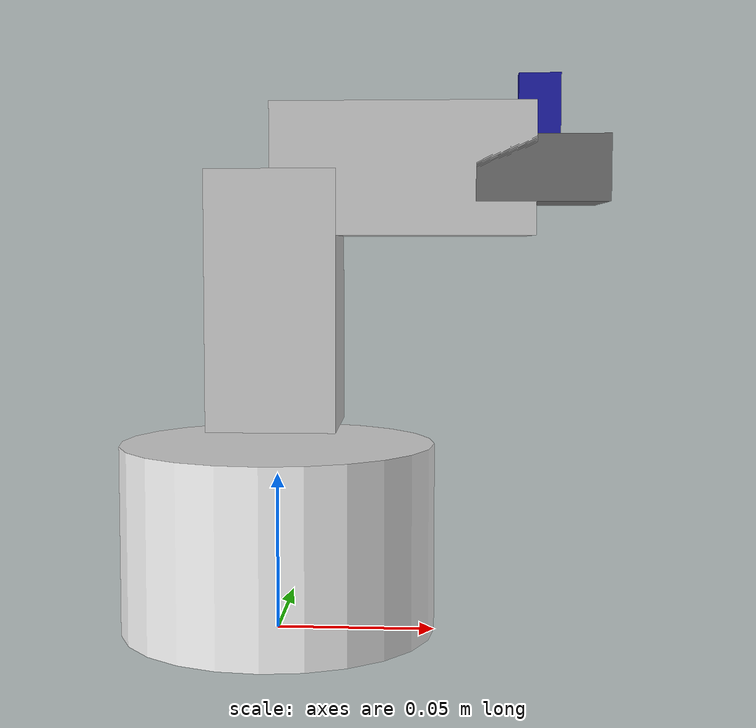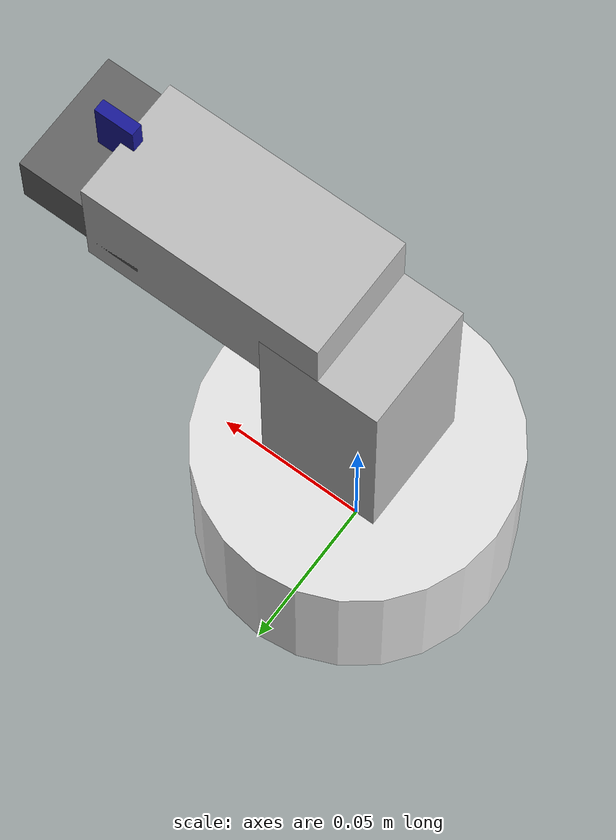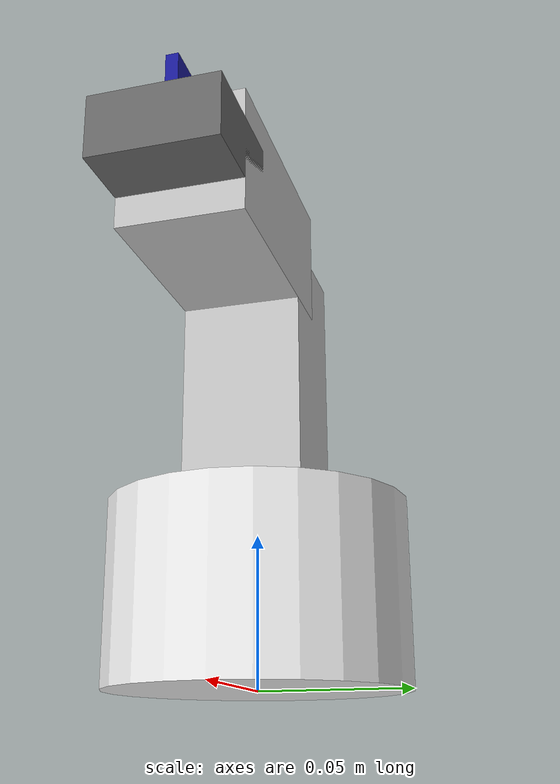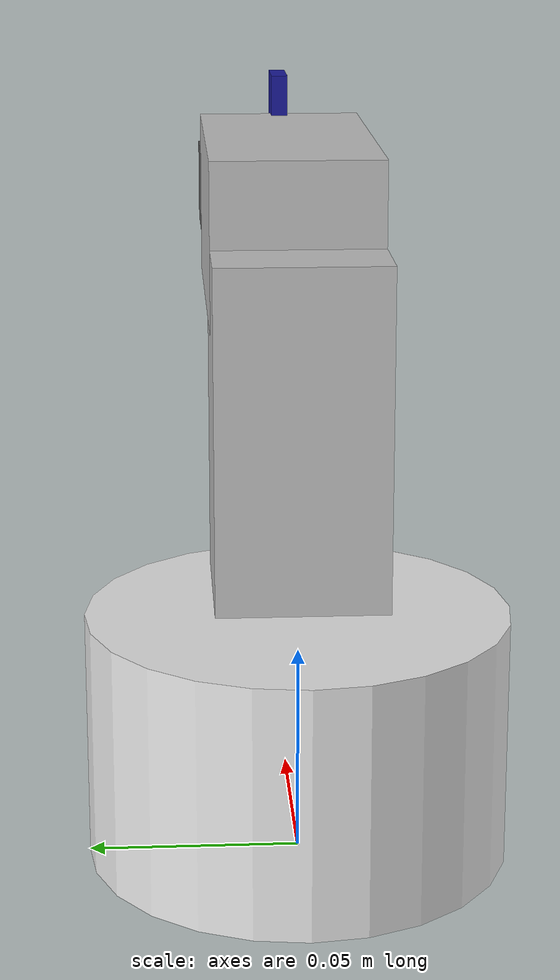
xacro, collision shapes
<?xml version="1.0"?>
<robot name="robot_arm" xmlns:xacro="http://www.ros.org/wiki/xacro">

  <!-- ── Constants ────────────────────────────────────────────────────── -->
  <xacro:property name="PI" value="3.14159265358979"/>

  <!-- Mesh scale: STL files are in mm → scale to metres -->
  <xacro:property name="mesh_scale" value="0.01 0.01 0.01"/>

  <!-- Default inertia helper: solid box approximation -->
  <xacro:macro name="box_inertia" params="m x y z">
    <inertial>
      <origin xyz="0 0 0" rpy="0 0 0"/>
      <mass value="${m}"/>
      <inertia
        ixx="${m*(y*y+z*z)/12}" ixy="0" ixz="0"
        iyy="${m*(x*x+z*z)/12}" iyz="0"
        izz="${m*(x*x+y*y)/12}"/>
    </inertial>
  </xacro:macro>

  <!-- ================================================================
       LINKS
  ================================================================ -->

  <!-- 1. world (virtual fixed origin) -->
  <link name="world"/>

  <!-- 2. base_link (basement / motor base) -->
  <link name="base_link">
    <xacro:box_inertia m="1.0" x="0.1" y="0.1" z="0.06"/>
    <visual>
      <origin rpy="0 0 0" xyz="-0.5 -0.5 0"/>
      <geometry>
        <mesh filename="package://robot_arm_description/meshes/basement.stl"
              scale="${mesh_scale}"/>
      </geometry>
      <material name="white">
        <color rgba="0.9 0.9 0.9 1"/>
      </material>
    </visual>
    <collision>
      <origin xyz="0 0 0.03" rpy="0 0 0"/>
      <geometry>
        <cylinder radius="0.05" length="0.06"/>
      </geometry>
    </collision>
  </link>

  <!-- 3. base_plate (rotating shoulder base) -->
  <link name="base_plate">
    <xacro:box_inertia m="0.5" x="0.08" y="0.08" z="0.03"/>
    <visual>
      <origin rpy="0 0 0" xyz="-0.39 -0.39 -0.56"/>
      <geometry>
        <mesh filename="package://robot_arm_description/meshes/base_plate.stl"
              scale="${mesh_scale}"/>
      </geometry>
      <material name="blue_dark">
        <color rgba="0.1 0.1 0.6 1"/>
      </material>
    </visual>
    <collision>
      <origin xyz="0 0 0" rpy="0 0 0"/>
      <geometry>
        <cylinder radius="0.04" length="0.03"/>
      </geometry>
    </collision>
  </link>

  <!-- 4. forward_drive_arm (first arm segment, vertical) -->
  <link name="forward_drive_arm">
    <xacro:box_inertia m="0.3" x="0.04" y="0.04" z="0.08"/>
    <visual>
      <origin rpy="0 -${PI/2} ${PI/2}" xyz="0.19 0.06 -0.08"/>
      <geometry>
        <mesh filename="package://robot_arm_description/meshes/forward_drive_arm.stl"
              scale="${mesh_scale}"/>
      </geometry>
      <material name="grey_light">
        <color rgba="0.75 0.75 0.75 1"/>
      </material>
    </visual>
    <collision>
      <origin xyz="0 0 0.04" rpy="0 0 0"/>
      <geometry>
        <box size="0.04 0.04 0.08"/>
      </geometry>
    </collision>
  </link>

  <!-- 5. horizontal_arm (second arm segment, horizontal reach) -->
  <link name="horizontal_arm">
    <xacro:box_inertia m="0.25" x="0.08" y="0.04" z="0.04"/>
    <visual>
      <origin rpy="${PI/2} 0 ${PI/2}" xyz="-0.03 -0.4 -0.06"/>
      <geometry>
        <mesh filename="package://robot_arm_description/meshes/horizontal_arm.stl"
              scale="${mesh_scale}"/>
      </geometry>
      <material name="grey_light"/>
    </visual>
    <collision>
      <origin xyz="0.04 0 0" rpy="0 0 0"/>
      <geometry>
        <box size="0.08 0.04 0.04"/>
      </geometry>
    </collision>
  </link>

  <!-- 6. claw_support (wrist / end-effector mounting plate) -->
  <link name="claw_support">
    <xacro:box_inertia m="0.15" x="0.04" y="0.04" z="0.02"/>
    <visual>
      <origin rpy="0 0 ${PI/2}" xyz="0 -0.05 -0.15"/>
      <geometry>
        <mesh filename="package://robot_arm_description/meshes/claw_support.stl"
              scale="${mesh_scale}"/>
      </geometry>
      <material name="grey_dark">
        <color rgba="0.4 0.4 0.4 1"/>
      </material>
    </visual>
    <collision>
      <origin xyz="0 0 0" rpy="0 0 0"/>
      <geometry>
        <box size="0.04 0.04 0.02"/>
      </geometry>
    </collision>
  </link>

  <!-- 7. gripper_right (right finger — actively controlled, joint4) -->
  <link name="gripper_right">
    <xacro:box_inertia m="0.05" x="0.013" y="0.004" z="0.02"/>
    <visual>
      <origin rpy="0 0 -${PI/2}" xyz="-0.1 0.5 -0.1"/>
      <geometry>
        <mesh filename="package://robot_arm_description/meshes/right_finger.stl"
              scale="${mesh_scale}"/>
      </geometry>
      <material name="blue_dark"/>
    </visual>
    <collision>
      <origin xyz="0 0 0.01" rpy="0 0 0"/>
      <geometry>
        <box size="0.013 0.004 0.02"/>
      </geometry>
    </collision>
  </link>

  <!-- 8. gripper_left (left finger — mirrors joint4 via mimic) -->
  <link name="gripper_left">
    <xacro:box_inertia m="0.05" x="0.013" y="0.004" z="0.02"/>
    <visual>
      <origin rpy="0 0 -${PI/2}" xyz="-0.04 0.5 -0.1"/>
      <geometry>
        <mesh filename="package://robot_arm_description/meshes/left_finger.stl"
              scale="${mesh_scale}"/>
      </geometry>
      <material name="blue_dark"/>
    </visual>
    <collision>
      <origin xyz="0 0 0.01" rpy="0 0 0"/>
      <geometry>
        <box size="0.013 0.004 0.02"/>
      </geometry>
    </collision>
  </link>

  <!-- ================================================================
       JOINTS
  ================================================================ -->

  <!-- J0 — world → base_link  (fixed: robot bolted to ground) -->
  <joint name="world_to_base" type="fixed">
    <parent link="world"/>
    <child  link="base_link"/>
    <origin rpy="0 0 0" xyz="0 0 0"/>
  </joint>

  <!-- J1 — base_link → base_plate  (revolute: waist rotation around Z)
       Height offset: 3.07 cm (from TP diagram) -->
  <joint name="joint1" type="revolute">
    <parent link="base_link"/>
    <child  link="base_plate"/>
    <origin rpy="0 0 0" xyz="0 0 0.0307"/>
    <axis xyz="0 0 1"/>
    <limit lower="-${PI/2}" upper="${PI/2}"
           effort="100" velocity="1.0"/>
  </joint>

  <!-- J2 — base_plate → forward_drive_arm  (revolute: shoulder pitch around Y)
       Height offset: 3.5 cm (from TP diagram) -->
  <joint name="joint2" type="revolute">
    <parent link="base_plate"/>
    <child  link="forward_drive_arm"/>
    <origin rpy="0 0 0" xyz="0 0 0.035"/>
    <axis xyz="1 0 0"/>
    <limit lower="-${PI/2}" upper="${PI/2}"
           effort="100" velocity="1.0"/>
  </joint>

  <!-- J3 — forward_drive_arm → horizontal_arm  (revolute: elbow pitch around Y)
       Height offset: 8 cm (from TP diagram) -->
  <joint name="joint3" type="revolute">
    <parent link="forward_drive_arm"/>
    <child  link="horizontal_arm"/>
    <origin rpy="0 0 0" xyz="0 0 0.08"/>
    <axis xyz="1 0 0"/>
    <limit lower="-${PI/2}" upper="${PI/2}"
           effort="100" velocity="1.0"/>
  </joint>

  <!-- J_claw — horizontal_arm → claw_support  (revolute: wrist rotation)
       Horizontal offset: 8.2 cm (from TP diagram) -->
  <joint name="joint_claw" type="revolute">
    <parent link="horizontal_arm"/>
    <child  link="claw_support"/>
    <origin rpy="0 0 0" xyz="0.082 0 0"/>
    <axis xyz="0 0 1"/>
    <limit lower="-${PI/2}" upper="${PI/2}"
           effort="50" velocity="1.0"/>
  </joint>

  <!-- J4 — claw_support → gripper_right  (prismatic: finger open/close)
       Range: 0 → 2.2 cm, offset 1 cm up (from TP diagram) -->
  <joint name="joint4" type="prismatic">
    <parent link="claw_support"/>
    <child  link="gripper_right"/>
    <origin rpy="0 0 0" xyz="0 0 0.01"/>
    <axis xyz="1 0 0"/>
    <limit lower="0" upper="0.022"
           effort="20" velocity="0.5"/>
  </joint>

  <!-- J_left — claw_support → gripper_left  (prismatic: mirrors joint4) -->
  <joint name="joint_gripper_left" type="prismatic">
    <parent link="claw_support"/>
    <child  link="gripper_left"/>
    <origin rpy="0 0 0" xyz="0 0 0.01"/>
    <axis xyz="-1 0 0"/>
    <limit lower="0" upper="0.022"
           effort="20" velocity="0.5"/>
    <!-- Mirror: left finger closes when right opens -->
    <mimic joint="joint4" multiplier="-1"/>
  </joint>

</robot>
